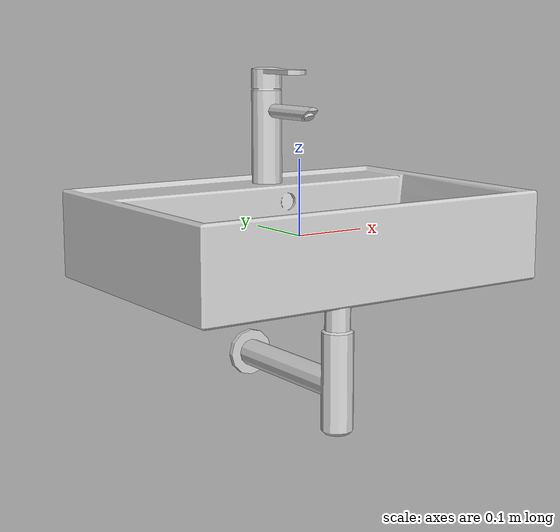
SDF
<sdf version="1.4">
	<model name="sink1">
		<link name="link">
			<visual name="mesh">
				<geometry>
					<mesh>
						<uri>model://meshes/sink1.dae</uri>
					</mesh>
				</geometry>
			</visual>
			<collision name="collider">
				<pose>0 0 0 0 0 0</pose>
				<geometry>
					<box>
						<size>0.5 0.36 0.116</size>
					</box>
				</geometry>
			</collision>
		</link>
	</model>
</sdf>
